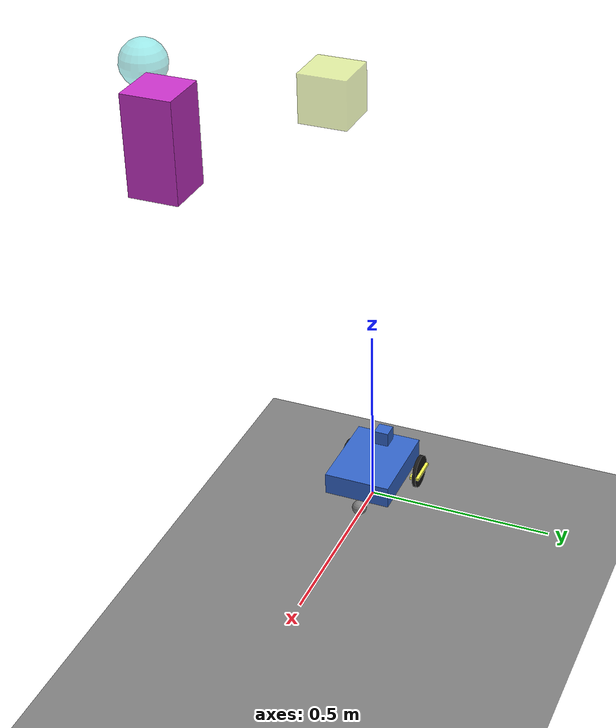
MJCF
<mujoco>
  <include file="world.xml"/>
  <worldbody>

    <!-- Box 1 (purple)  -->
    <body name="purple-box" pos="1 0 1.5">
      <freejoint/>
      <geom type="box" size="0.05 0.05 0.1" rgba="0.8 0.2 0.8 1"/>
    </body>

    <!-- Box 2 (yellow) -->
    <body name="yellow-box" pos="0.7 0.2 1.5">
      <freejoint/>
      <geom type="box" size="0.05 0.05 0.05" rgba="0.8 0.9 0.3 0.5"/>
    </body>

    <!-- Sphere (cyan) -->
    <body name="cyan-sphere" pos="0.7 -0.2 1.5">
      <freejoint/>
      <geom type="sphere" size="0.05" rgba="0.3 0.9 0.9 0.5"/>
    </body>

  </worldbody>
</mujoco>

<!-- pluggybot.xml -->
<mujocoinclude>
  <visual><global offwidth="1280" offheight="720"/></visual>

  <worldbody>

    <!-- origin at axle height (aka wheel radius) -->
    <body name="pluggybot" pos="0 0 0.045">
      <freejoint />

      <geom
        name="chassis"
        type="box"
        size="0.12 0.09 0.03"
        pos="0 0 0.045"
        mass="0.9"
        rgba="0.2 0.4 0.8 1"
      />

      <!--  Head  -->
      <body name="head" pos="-0.08 0 0.095">
        <geom
          name="head_mount"
          type="box"
          size="0.02 0.02 0.02"
          pos="0 0 0"
          mass="0.12"
          rgba="0.2 0.4 0.8 1"
        />

        <!--  Cameras  -->
        <!--  Decoding xyaxes="0 -1 0  0 0 1":
                image-right is body −y, image-up is body +z,
                which forces the viewing direction to be body +x
        -->
        <camera name="left_eye" pos="0.03 0.03 0" xyaxes="0 -1 0 0 0 1" fovy="41"/>
        <camera name="right_eye" pos="0.03 -0.03 0" xyaxes="0 -1 0 0 0 1" fovy="41"/>

      </body>

      <body name="left_wheel" pos="-0.08 0.105 0">
        <joint
          name="left_wheel_joint"
          type="hinge"
          axis="0 1 0"
          armature="0.012"
          damping="0.05"
        />
        <!-- solref simulates compliant, damped tire contact (rubber) -->
        <geom
          type="cylinder"
          size="0.045 0.005"
          zaxis="0 1 0"
          mass="0.05"
          rgba="0.1 0.1 0.1 1"
          solref="0.05 1"
        />
        <!-- Spoke - purely visual, to see rotation  -->
        <geom
          type="box"
          size="0.04 0.013 0.004"
          mass="0.001"
          contype="0"
          conaffinity="0"
          rgba="1 1 0.3 1"
        />
      </body>

      <body name="right_wheel" pos="-0.08 -0.105 0">
        <joint
          name="right_wheel_joint"
          type="hinge"
          axis="0 1 0"
          armature="0.012"
          damping="0.05"
        />
        <!-- solref simulates compliant, damped tire contact (rubber) -->
        <geom
          type="cylinder"
          size="0.045 0.005"
          zaxis="0 1 0"
          mass="0.05"
          rgba="0.1 0.1 0.1 1"
          solref="0.05 1"
        />
        <!-- Spoke - purely visual, to see rotation  -->
        <geom
          type="box"
          size="0.04 0.013 0.004"
          mass="0.001"
          contype="0"
          conaffinity="0"
          rgba="1 1 0.3 1"
        />
      </body>

      <!-- caster:
        center height is radius at rest,
        so z = caster_radius − wheel_radius = 0.02 − 0.045 = −0.025 -->
      <geom
        name="caster"
        type="sphere"
        size="0.02"
        pos="0.10 0 -0.025"
        mass="0.02"
        friction="0.001"
      />

    </body>
  </worldbody>

  <actuator>
    <velocity
      name="left_motor"
      joint="left_wheel_joint"
      kv="0.5"
      ctrlrange="-21 21"
      forcerange="-2.06 2.06"
    />
    <velocity
      name="right_motor"
      joint="right_wheel_joint"
      kv="0.5"
      ctrlrange="-21 21"
      forcerange="-2.06 2.06"
    />
  </actuator>

</mujocoinclude>

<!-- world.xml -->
<mujoco>

  <!-- Needed to fix wheel physics -->
  <option integrator="implicitfast"/>

  <include file="pluggybot.xml" />

  <worldbody>

    <!-- directional light -->
    <light pos="0 0 3" dir="0 0 -1"/>

    <!-- The ground -->
    <geom name="floor" type="plane" size="10 10 0.1" rgba="0.5 0.5 0.5 1"/>

  </worldbody>
</mujoco>
